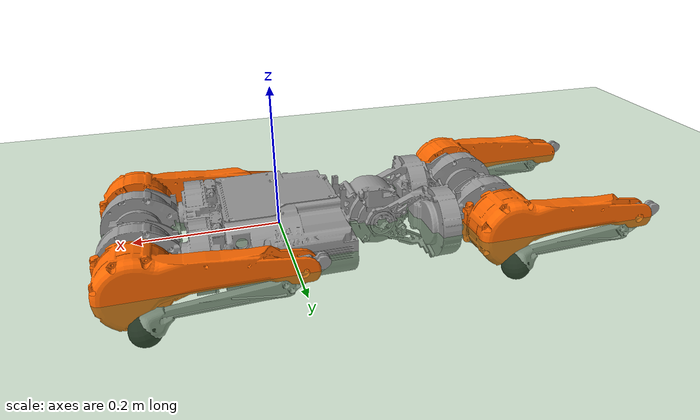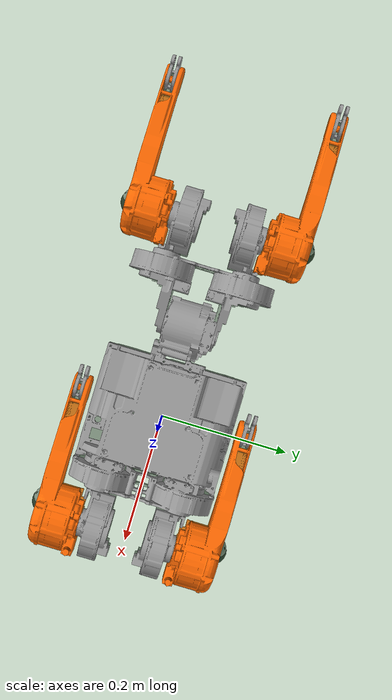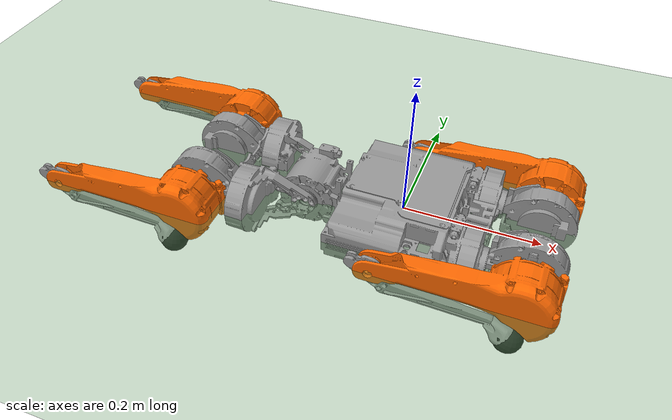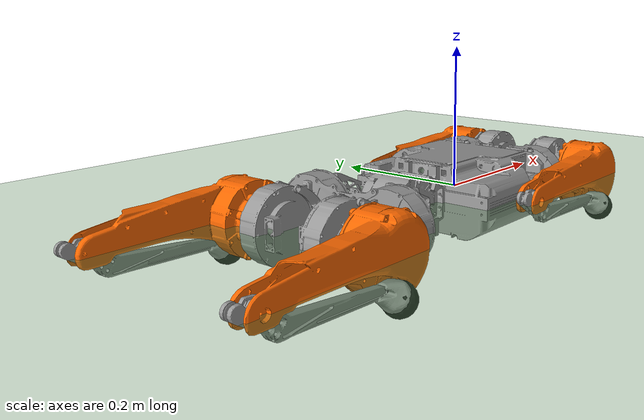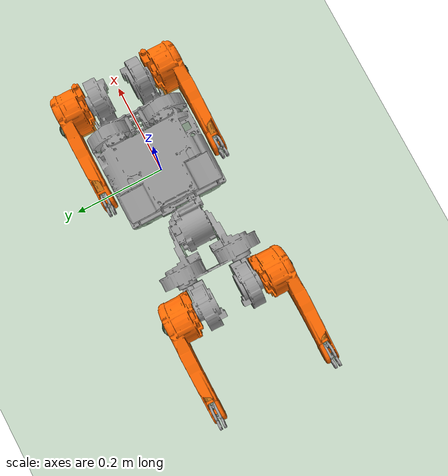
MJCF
<mujoco model="intention">
  <compiler angle="radian" assetdir="assets" autolimits="true"/>

  <option cone="pyramidal" impratio="1" solver="Newton" iterations="1" ls_iterations="4" density="1.2" viscosity="0.00002">
    <flag eulerdamp="disable"/>
  </option>

  <default>
    <site size="0.01" group="5"/>
    <geom solref="-1000 -80" mass="0" contype="0" conaffinity="0" group="1"/>
    <joint stiffness="0.0" damping="0.01" armature="0.013122" frictionloss="0.48"/>
    <position forcelimited="true" kp="20" kv="0.5"/>
    <default class="foot">
      <geom size="0.02" friction="1.1 0.005 0.0001" solimp="0.015 1 0.02" condim="6" priority="1"/>
    </default>
    <default class="reward_collision_sphere">
      <geom group="5" rgba="1 0 0 1"/>
    </default>
  </default>

  <asset>
    <texture type="skybox" builtin="gradient" rgb1="0.95 0.95 0.95" rgb2="0.95 0.95 0.95" width="100" height="100" />
    <texture name="texplane" type="2d" builtin="checker" rgb1="0.3 0.55 0.3" rgb2="0.3 0.55 0.3" mark="edge" markrgb="1.0 1.0 1.0" width="512" height="512"/>
    <material name="MatPlane" texture="texplane" texrepeat="2 2" texuniform="true" specular="0.9" shininess="0.5" reflectance="0.0" rgba="1 1 1 1"/>

    <mesh name="body" file="body.stl" scale="0.001 0.001 0.001"/>
    <mesh name="rear" file="rear.stl" scale="0.001 0.001 0.001"/>
    <mesh name="l0r" file="l0r.stl" scale="0.001 0.001 0.001"/>
    <mesh name="l1r" file="l1r.stl" scale="0.001 0.001 0.001"/>
    <mesh name="l2r" file="l2r.stl" scale="0.001 0.001 0.001"/>
    <mesh name="l0l" file="l0l.stl" scale="0.001 0.001 0.001"/>
    <mesh name="l1lf" file="l1lf.stl" scale="0.001 0.001 0.001"/>
    <mesh name="l2l" file="l2l.stl" scale="0.001 0.001 0.001"/>
  </asset>

  <worldbody>
    <geom name="floor" pos="0 0 0" material="MatPlane" size="100 100 0.125" type="plane" group="0"/>
    <light name="toplight1" directional="true" dir="1 0 -0.5" diffuse="0.2 0.2 0.2" specular="0.3 0.3 0.3" ambient="0.01 0.01 0.01" castshadow="true"/>
    <light name="toplight2" directional="true" dir="-1 0 -0.5" diffuse="0.2 0.2 0.2" specular="0.3 0.3 0.3" ambient="0.01 0.01 0.01" castshadow="true"/>
    <light name="toplight3" directional="true" dir="0 1 -0.5" diffuse="0.2 0.2 0.2" specular="0.3 0.3 0.3" ambient="0.01 0.01 0.01" castshadow="true"/>
    <light name="toplight4" directional="true" dir="0 -1 -1" diffuse="0.2 0.2 0.2" specular="0.3 0.3 0.3" ambient="0.01 0.01 0.01" castshadow="true"/>
    <light name="spotlight" mode="targetbodycom" target="trunk" pos="0 0 2" diffuse="0.4 0.4 0.4" specular="0.3 0.3 0.3" cutoff="10" castshadow="false"/>

    <body name="trunk" pos="0 0 0">
      <camera name="track" mode="trackcom" pos="0 -2 0" xyaxes="1 0 0 0 0 1"/>

      <freejoint/>

      <site name="imu" pos="0.049 0 0"/>

      <inertial mass="5.423" pos="0.0 0.0 0.0" diaginertia="0.02164656458935 0.0407033948939 0.05472198086004"/>

      <geom type="mesh" contype="0" conaffinity="0" group="2" density="0" rgba="0.6 0.6 0.6 1" mesh="body"/>
      <geom size="0.11 0.07 0.045" pos="0.025 0 0" type="box" rgba="0.6 0.6 0.6 1" group="3"/>
      <geom name="trunk_1" size="0.05 0.11" pos="0.025 0.064 0" quat="0.707388 0 0.706825 0" type="cylinder" rgba="0.6 0.6 0.6 1" group="3"/>
      <geom name="trunk_2" size="0.05 0.11" pos="0.025 -0.064 0" quat="0.707388 0 0.706825 0" type="cylinder" rgba="0.6 0.6 0.6 1" group="3"/>
      <geom class="reward_collision_sphere" pos="0.025 0 0" size="0.08"/>

      <camera name="ego_camera" pos="0.2 0 0" quat="-0.5 -0.5 0.5 0.5"/>

      <body name="rear" pos="-0.141 -0.0395 0" quat="-9.37064e-07 -0.706262 0.707951 9.39306e-07">
        <inertial pos="-0.038 0.075 0" quat="0.5 0.5 -0.5 0.5" mass="1.337" diaginertia="0.00509714 0.00464543 0.00198234" />
        <joint name="spine_joint" pos="0 0 0" axis="1 0 0" limited="true" range="-1.57 1.57" />
        <geom type="mesh" contype="0" conaffinity="0" group="2" rgba="0.6 0.6 0.6 1" mesh="rear" />
        <geom size="0.1 0.025 0.05" pos="-0.04 0.08 0" type="box" rgba="0.6 0.6 0.6 0" />
        <geom class="reward_collision_sphere" pos="-0.04 0 0" size="0.05"/>
        <body name="rl_l0" pos="-0.1025 0.10765 0" quat="0.707388 0 0 0.706825">
          <inertial pos="0.0557 -0.016 0" quat="0.5 0.5 0.5 0.5" mass="0.645" diaginertia="0.000847656 0.000586985 0.000492924" />
          <joint name="RL_hip_joint" pos="0 0 0" axis="1 0 0" limited="true" range="-1.57 1.57" />
          <geom type="mesh" contype="0" conaffinity="0" group="2" rgba="0.6 0.6 0.6 1" mesh="l0l" />
          <body name="rl_l1" pos="0.0555 0.0125 0" quat="9.38559e-07 0.707388 0.706825 9.37812e-07">
            <inertial pos="0.031 0.0164 -0.003" quat="0.707107 0.707107 0 0" mass="0.827" diaginertia="0.0040626 0.00387148 0.000683492" />
            <joint name="RL_thigh_joint" pos="0 0 0" axis="1 0 0" limited="true" range="-1.57 1.57" />
            <geom type="mesh" contype="0" conaffinity="0" group="2" rgba="1 0.41 0 1" mesh="l1lf" />
            <geom size="0.05 0.055" quat="0.707388 0 0.706825 0" type="cylinder" rgba="1 0.41 0 0" />
            <geom class="reward_collision_sphere" pos="0.01 0 0" size="0.065"/>
              <body name="rl_l2" pos="0.0584 0.2 0" quat="0.116034 -0.993245 0 0">
                <inertial pos="0.001 0.104 -0.003" quat="0.707107 0.707107 0 0" mass="0.118" diaginertia="0.000525296 0.000518946 2.20064e-05" />
                <joint name="RL_calf_joint" pos="0 0 0" axis="1 0 0" limited="true" range="0 2.53" />
                <geom type="mesh" contype="0" conaffinity="0" group="2" rgba="0.6 0.6 0.6 1" mesh="l2l" />
                <geom size="0.01 0.03125" pos="0 -0.01 0.0055" quat="0.796084 -0.605186 0 0" type="cylinder" rgba="0.6 0.6 0.6 0" />
                <geom name="RL_calf" size="0.015 0.1" pos="0 0.1 0.005" quat="0.670968 -0.741065 0.0185305 -0.0167777" type="cylinder" rgba="0.6 0.6 0.6 0" />
                <geom size="0.021" pos="0.0054 0.2 0" contype="0" conaffinity="0" group="2" rgba="0.1 0.1 0.1 1" />
                <geom name="RL_foot" class="foot" pos="0.0054 0.2 0" rgba="0.1 0.1 0.1 1"/>
                <site name="RL_foot" class="foot" pos="0.0054 0.2 0"/>
                <geom class="reward_collision_sphere" pos="0 0 0" size="0.025"/>
                <geom class="reward_collision_sphere" pos="0.0054 0.2 0" size="0.023"/>
              </body>
          </body>
        </body>
        <body name="rr_l0" pos="0.0255 0.10725 0" quat="0.707388 0 0 0.706825">
          <inertial pos="0.0557 0.016 0" quat="0.5 0.5 0.5 0.5" mass="0.645" diaginertia="0.000847656 0.000586985 0.000492924" />
          <joint name="RR_hip_joint" pos="0 0 0" axis="1 0 0" limited="true" range="-1.57 1.57" />
          <geom type="mesh" contype="0" conaffinity="0" group="2" rgba="0.6 0.6 0.6 1" mesh="l0r" />
          <body name="rr_l1" pos="0.0555 -0.0125 0" quat="9.38559e-07 0.707388 -0.706825 -9.37812e-07">
            <inertial pos="0.031 -0.0164 -0.003" quat="0.707107 0.707107 0 0" mass="0.827" diaginertia="0.0040626 0.00387148 0.000683492" />
            <joint name="RR_thigh_joint" pos="0 0 0" axis="1 0 0" limited="true" range="-1.57 1.57" />
            <geom type="mesh" contype="0" conaffinity="0" group="2" rgba="1 0.41 0 1" mesh="l1r" />
            <geom size="0.05 0.055" quat="0.707388 0 0.706825 0" type="cylinder" rgba="1 0.41 0 0" />
            <geom class="reward_collision_sphere" pos="0.01 0 0" size="0.065"/>
            <body name="rr_l2" pos="0.0584 -0.2 0" quat="0.116034 0.993245 0 0">
              <inertial pos="0.001 -0.104 -0.003" quat="0.707107 0.707107 0 0" mass="0.118" diaginertia="0.000525296 0.000518946 2.20064e-05" />
              <joint name="RR_calf_joint" pos="0 0 0" axis="1 0 0" limited="true" range="-2.53 0" />
              <geom type="mesh" contype="0" conaffinity="0" group="2" rgba="0.6 0.6 0.6 1" mesh="l2r" />
              <geom size="0.01 0.03125" pos="0 0.01 0.0055" quat="0.796084 0.605186 0 0" type="cylinder" rgba="0.6 0.6 0.6 0" />
              <geom name="RR_calf" size="0.015 0.1" pos="0 -0.1 0.005" quat="0.670968 0.741065 0.0185305 0.0167777" type="cylinder" rgba="0.6 0.6 0.6 0" />
              <geom size="0.021" pos="0.0054 -0.2 0" contype="0" conaffinity="0" group="2" rgba="0.1 0.1 0.1 1" />
              <geom name="RR_foot" class="foot" pos="0.0054 -0.2 0" rgba="0.1 0.1 0.1 1"/>
              <site name="RR_foot" class="foot" pos="0.0054 -0.2 0"/>
                <geom class="reward_collision_sphere" pos="0 0 0" size="0.025"/>
                <geom class="reward_collision_sphere" pos="0.0054 -0.2 0" size="0.023"/>
            </body>
          </body>
        </body>
      </body>
      <body name="fr_l0" pos="0.1375 -0.064 0">
        <inertial pos="0.0557 0.016 0" quat="0.5 0.5 0.5 0.5" mass="0.645" diaginertia="0.000847656 0.000586985 0.000492924" />
        <joint name="FR_hip_joint" pos="0 0 0" axis="1 0 0" limited="true" range="-1.57 1.57" />
        <geom type="mesh" contype="0" conaffinity="0" group="2" rgba="0.6 0.6 0.6 1" mesh="l0r" />
        <body name="fr_l1" pos="0.0555 -0.0125 0" quat="0.707388 0 0 -0.706825">
          <inertial pos="0.031 -0.016 -0.003" quat="0.707107 0.707107 0 0" mass="0.827" diaginertia="0.0040626 0.00387148 0.000683492" />
          <joint name="FR_thigh_joint" pos="0 0 0" axis="1 0 0" limited="true" range="-1.57 1.57" />
          <geom type="mesh" contype="0" conaffinity="0" group="2" rgba="1 0.41 0 1" mesh="l1r" />
          <geom size="0.05 0.055" quat="0.707388 0 0.706825 0" type="cylinder" rgba="1 0.41 0 0" />
          <geom class="reward_collision_sphere" pos="0.01 0 0" size="0.065"/>
          <body name="fr_l2" pos="0.0584 -0.2 0" quat="0.116034 0.993245 0 0">
            <inertial pos="0.001 -0.104 -0.003" quat="0.707107 0.707107 0 0" mass="0.118" diaginertia="0.000525296 0.000518946 2.20064e-05" />
            <joint name="FR_calf_joint" pos="0 0 0" axis="1 0 0" limited="true" range="-2.53 0" />
            <geom type="mesh" contype="0" conaffinity="0" group="2" rgba="0.6 0.6 0.6 1" mesh="l2r" />
            <geom size="0.01 0.03125" pos="0 0.01 0.0055" quat="0.796084 0.605186 0 0" type="cylinder" rgba="0.6 0.6 0.6 0" />
            <geom name="FR_calf" size="0.015 0.1" pos="0 -0.1 0.005" quat="0.670968 0.741065 0.0185305 0.0167777" type="cylinder" rgba="1 0 0 0" />
            <geom size="0.021" pos="0.0054 -0.2 0" contype="0" conaffinity="0" group="2" rgba="0.1 0.1 0.1 1" />
            <geom name="FR_foot" class="foot" pos="0.0054 -0.2 0" rgba="0.1 0.1 0.1 1"/>
            <site name="FR_foot" class="foot" pos="0.0054 -0.2 0"/>
            <geom class="reward_collision_sphere" pos="0 0 0" size="0.025"/>
            <geom class="reward_collision_sphere" pos="0.0054 -0.2 0" size="0.023"/>
          </body>
        </body>
      </body>
      <body name="fl_l0" pos="0.1375 0.064 0">
        <inertial pos="0.0557 -0.016 0" quat="0.5 0.5 0.5 0.5" mass="0.645" diaginertia="0.000847656 0.000586985 0.000492924" />
        <joint name="FL_hip_joint" pos="0 0 0" axis="1 0 0" limited="true" range="-1.57 1.57" />
        <geom type="mesh" contype="0" conaffinity="0" group="2" rgba="0.6 0.6 0.6 1" mesh="l0l" />
        <body name="fl_l1" pos="0.0555 0.0125 0" quat="0.707388 0 0 0.706825">
          <inertial pos="0.031 0.0164 -0.003" quat="0.707107 0.707107 0 0" mass="0.827" diaginertia="0.0040626 0.00387148 0.000683492" />
          <joint name="FL_thigh_joint" pos="0 0 0" axis="1 0 0" limited="true" range="-1.57 1.57" />
          <geom type="mesh" contype="0" conaffinity="0" group="2" rgba="1 0.41 0 1" mesh="l1lf" />
          <geom size="0.05 0.055" quat="0.707388 0 0.706825 0" type="cylinder" rgba="1 0.41 0 0" />
          <geom class="reward_collision_sphere" pos="0.01 0 0" size="0.065"/>
          <body name="fl_l2" pos="0.0584 0.2 0" quat="0.116034 -0.993245 0 0">
            <inertial pos="0.001 0.104 -0.003" quat="0.707107 0.707107 0 0" mass="0.118" diaginertia="0.000525296 0.000518946 2.20064e-05" />
            <joint name="FL_calf_joint" pos="0 0 0" axis="1 0 0" limited="true" range="0 2.53" />
            <geom type="mesh" contype="0" conaffinity="0" group="2" rgba="0.6 0.6 0.6 1" mesh="l2l" />
            <geom size="0.01 0.03125" pos="0 -0.01 0.0055" quat="0.796084 -0.605186 0 0" type="cylinder" rgba="0.6 0.6 0.6 0" />
            <geom name="FL_calf" size="0.015 0.1" pos="0 0.1 0.005" quat="0.670968 -0.741065 0.0185305 -0.0167777" type="cylinder" rgba="0.6 0.6 0.6 0" />
            <geom size="0.021" pos="0.0054 0.2 0" contype="0" conaffinity="0" group="2" rgba="0.1 0.1 0.1 1" />
            <geom name="FL_foot" class="foot" pos="0.0054 0.2 0" rgba="0.1 0.1 0.1 1"/>
            <site name="FL_foot" class="foot" pos="0.0054 0.2 0"/>
            <geom class="reward_collision_sphere" pos="0 0 0" size="0.025"/>
            <geom class="reward_collision_sphere" pos="0.0054 0.2 0" size="0.023"/>
          </body>
        </body>
      </body>
    </body>
  </worldbody>

  <contact>
    <pair geom1="RL_foot" geom2="floor"/>
    <pair geom1="RR_foot" geom2="floor"/>
    <pair geom1="FR_foot" geom2="floor"/>
    <pair geom1="FL_foot" geom2="floor"/>
  </contact>

  <actuator>
    <position name="spine" joint="spine_joint" forcerange="-48 48"/>
    <position name="RL_hip" joint="RL_hip_joint" forcerange="-16 16"/>
    <position name="RL_thigh" joint="RL_thigh_joint" forcerange="-16 16"/>
    <position name="RL_calf" joint="RL_calf_joint" forcerange="-16 16"/>
    <position name="RR_hip" joint="RR_hip_joint" forcerange="-16 16"/>
    <position name="RR_thigh" joint="RR_thigh_joint" forcerange="-16 16"/>
    <position name="RR_calf" joint="RR_calf_joint" forcerange="-16 16"/>
    <position name="FR_hip" joint="FR_hip_joint" forcerange="-16 16"/>
    <position name="FR_thigh" joint="FR_thigh_joint" forcerange="-16 16"/>
    <position name="FR_calf" joint="FR_calf_joint" forcerange="-16 16"/>
    <position name="FL_hip" joint="FL_hip_joint" forcerange="-16 16"/>
    <position name="FL_thigh" joint="FL_thigh_joint" forcerange="-16 16"/>
    <position name="FL_calf" joint="FL_calf_joint" forcerange="-16 16"/>
  </actuator>

  <sensor>
    <gyro site="imu" name="imu_angular_velocity"/>
    <velocimeter site="imu" name="imu_linear_velocity"/>
    <framelinvel objtype="site" objname="RL_foot" name="RL_foot_global_linear_velocity"/>
    <framelinvel objtype="site" objname="RR_foot" name="RR_foot_global_linear_velocity"/>
    <framelinvel objtype="site" objname="FR_foot" name="FR_foot_global_linear_velocity"/>
    <framelinvel objtype="site" objname="FL_foot" name="FL_foot_global_linear_velocity"/>
  </sensor>

  <keyframe>
    <key name="home" qpos="0 0 0.316 1 0 0 0
      0.0
      -0.1 -0.8 1.5
      0.1 0.8 -1.5
      -0.1 0.8 -1.5
      0.1 -0.8 1.5"/>
  </keyframe>
</mujoco>
